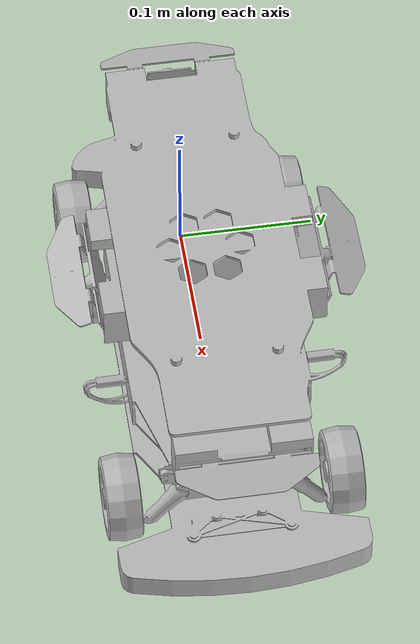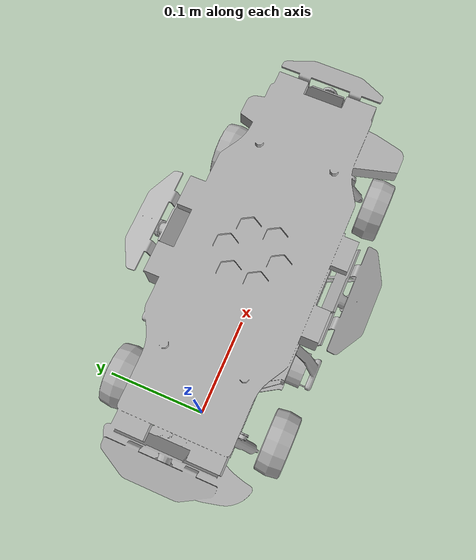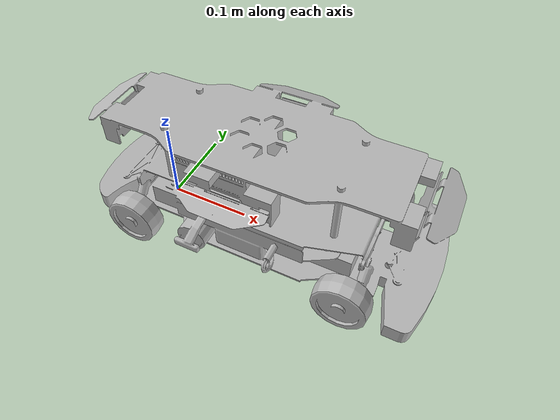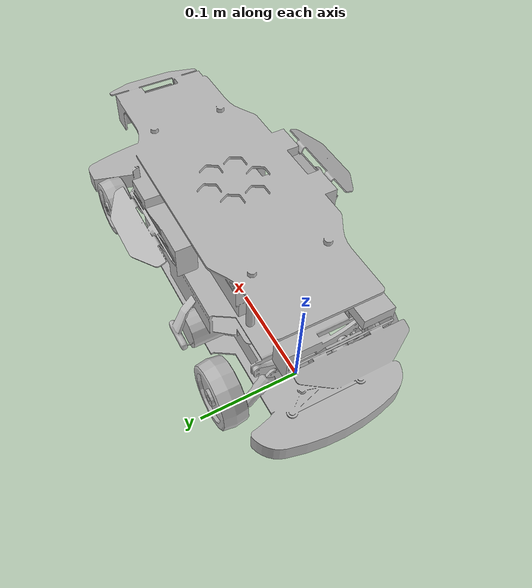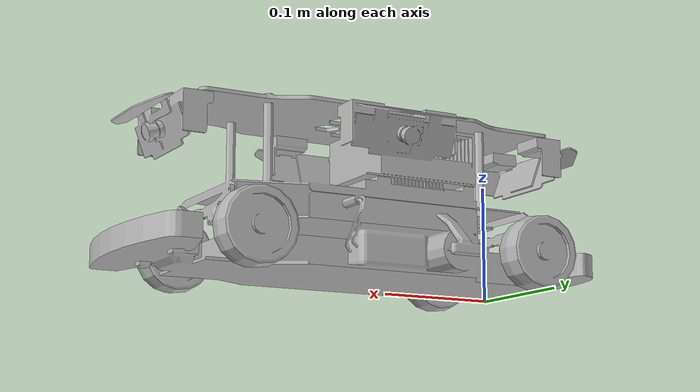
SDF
<?xml version="1.0" ?>
<sdf version="1.6">
  <model name="robocar_1_10">
    <static>false</static>

    <link name="base">
      <pose>0.0 0.0 0.0 0 0 0</pose>

      <inertial>
        <mass>3.0</mass>
        <pose>0.125 0.0 0.07 0 0 0</pose>
        <inertia>
          <ixx>0.03</ixx>
          <ixy>0.0</ixy>
          <iyy>0.050</iyy>
          <ixz>0.0</ixz>
          <iyz>0.0</iyz>
          <izz>0.054</izz>
        </inertia>
      </inertial>

      <collision name="collision">
        <pose>0.15 0.0 0.08</pose>
        <geometry>
          <box>
            <size>0.423 0.224 0.10</size>
          </box>
        </geometry>
      </collision>

      <visual name="visual">
        <geometry>
          <mesh>
            <uri>model://meshes/body.obj</uri>
          </mesh>
        </geometry>
      </visual>
    </link>

    <link name="rear_right_wheel">
      <pose>0.0 -0.07994 0.03165 0 0 0</pose>

      <inertial>
        <mass>0.2</mass>
        <inertia>
          <ixx>6.5e-5</ixx>
          <ixy>0.0</ixy>
          <iyy>1e-4</iyy>
          <ixz>0.0</ixz>
          <iyz>0.0</iyz>
          <izz>6.5e-5</izz>
        </inertia>
      </inertial>

      <visual name="visual">
        <pose>0.0 0.0 0.0 0 0 0.0</pose>
        <geometry>
          <mesh>
            <uri>model://meshes/tire.obj</uri>
          </mesh>
        </geometry>
      </visual>

      <collision name="collision">
        <pose>0.0 0.0 0.0 0 0 0</pose>
        <geometry>
          <sphere>
            <radius>0.03165</radius>
          </sphere>
        </geometry>
        <surface>
          <friction>
            <ode>
              <mu>1.1</mu>
              <mu2>1.1</mu2>
              <slip1>0.0</slip1>
              <slip2>0.0</slip2>
            </ode>
          </friction>
          <contact>
            <ode>
              <min_depth>0.001</min_depth>
              <kp>1e6</kp>
            </ode>
          </contact>
        </surface>
      </collision>

    </link>

    <link name="rear_right_wheel_holder">
      <pose relative_to="rear_right_wheel">0 0 0 0 0 0</pose>
    </link>

    <joint type="prismatic" name="rear_right_wheel_choke_joint">
      <child>rear_right_wheel_holder</child>
      <parent>base</parent>
      <axis>
        <xyz>0 0 1</xyz>
        <limit>
          <lower>-0.03</lower>
          <upper>0.03</upper>
        </limit>
        <dynamics>
          <damping>1000</damping>
          <spring_stiffness>3000</spring_stiffness>
          <spring_reference>0</spring_reference>
        </dynamics>
      </axis>
      <physics>
        <ode>
          <implicit_spring_damper>1</implicit_spring_damper>
          <cfm_damping>1</cfm_damping>
        </ode>
      </physics>
    </joint>

    <link name="rear_left_wheel">
      <pose>0.0 0.07994 0.03165 0 0 0</pose>

      <inertial>
        <mass>0.2</mass>
        <inertia>
          <ixx>6.5e-5</ixx>
          <ixy>0.0</ixy>
          <iyy>1e-4</iyy>
          <ixz>0.0</ixz>
          <iyz>0.0</iyz>
          <izz>6.5e-5</izz>
        </inertia>
      </inertial>

      <visual name="visual">
        <pose>0.0 0.0 0.0 0 0 0.0</pose>
        <geometry>
          <mesh>
            <uri>model://meshes/tire.obj</uri>
          </mesh>
        </geometry>
      </visual>

      <collision name="collision">
        <pose>0.0 0.0 0.0 0 0 0</pose>
        <geometry>
          <sphere>
            <radius>0.03165</radius>
          </sphere>
        </geometry>
        <surface>
          <friction>
            <ode>
              <mu>1.1</mu>
              <mu2>1.1</mu2>
              <slip1>0.0</slip1>
              <slip2>0.0</slip2>
            </ode>
          </friction>
          <contact>
            <ode>
              <min_depth>0.001</min_depth>
              <kp>1e6</kp>
            </ode>
          </contact>
        </surface>
      </collision>

    </link>

    <link name="rear_left_wheel_holder">
      <pose relative_to="rear_left_wheel">0 0 0 0 0 0</pose>
    </link>

    <joint type="prismatic" name="rear_left_wheel_choke_joint">
      <child>rear_left_wheel_holder</child>
      <parent>base</parent>
      <axis>
        <xyz>0 0 1</xyz>
        <limit>
          <lower>-0.03</lower>
          <upper>0.03</upper>
        </limit>
        <dynamics>
          <damping>1000</damping>
          <spring_stiffness>3000</spring_stiffness>
          <spring_reference>0</spring_reference>
        </dynamics>
      </axis>
      <physics>
        <ode>
          <implicit_spring_damper>1</implicit_spring_damper>
          <cfm_damping>1</cfm_damping>
        </ode>
      </physics>
    </joint>

    <link name="front_right_wheel">
      <pose>0.2568 -0.07994 0.03165 0 0 0</pose>

      <inertial>
        <mass>0.2</mass>
        <inertia>
          <ixx>6.5e-5</ixx>
          <ixy>0.0</ixy>
          <iyy>1e-4</iyy>
          <ixz>0.0</ixz>
          <iyz>0.0</iyz>
          <izz>6.5e-5</izz>
        </inertia>
      </inertial>

      <visual name="visual">
        <pose>0.0 0.0 0.0 0 0 0.0</pose>
        <geometry>
          <mesh>
            <uri>model://meshes/tire.obj</uri>
          </mesh>
        </geometry>
      </visual>

      <collision name="collision">
        <pose>0.0 0.0 0.0 0 0 0</pose>
        <geometry>
          <sphere>
            <radius>0.03165</radius>
          </sphere>
        </geometry>
        <surface>
          <friction>
            <ode>
              <mu>0.9</mu>
              <mu2>0.9</mu2>
              <slip1>0.0</slip1>
              <slip2>0.0</slip2>
            </ode>
          </friction>
          <contact>
            <ode>
              <min_depth>0.001</min_depth>
              <kp>1e6</kp>
            </ode>
          </contact>
        </surface>
      </collision>

    </link>

    <link name="front_right_wheel_suspension">
      <pose relative_to="front_right_wheel">0 0 0 0 0 0</pose>
    </link>

    <link name="front_right_wheel_holder">
      <pose relative_to="front_right_wheel">0 0 0 0 0 0</pose>
    </link>

    <joint type="prismatic" name="front_right_wheel_choke_joint">
      <child>front_right_wheel_suspension</child>
      <parent>base</parent>
      <axis>
        <xyz>0 0 1</xyz>
        <limit>
          <lower>-0.03</lower>
          <upper>0.03</upper>
        </limit>
        <dynamics>
          <damping>1000</damping>
          <spring_stiffness>3000</spring_stiffness>
          <spring_reference>0</spring_reference>
        </dynamics>
      </axis>
      <physics>
        <ode>
          <implicit_spring_damper>1</implicit_spring_damper>
          <cfm_damping>1</cfm_damping>
        </ode>
      </physics>
    </joint>

    <link name="front_left_wheel">
      <pose>0.2568 0.07994 0.03165 0 0 0</pose>

      <inertial>
        <mass>0.2</mass>
        <inertia>
          <ixx>6.5e-5</ixx>
          <ixy>0.0</ixy>
          <iyy>1e-4</iyy>
          <ixz>0.0</ixz>
          <iyz>0.0</iyz>
          <izz>6.5e-5</izz>
        </inertia>
      </inertial>

      <visual name="visual">
        <pose>0.0 0.0 0.0 0 0 0.0</pose>
        <geometry>
          <mesh>
            <uri>model://meshes/tire.obj</uri>
          </mesh>
        </geometry>
      </visual>

      <collision name="collision">
        <pose>0.0 0.0 0.0 0 0 0</pose>
        <geometry>
          <sphere>
            <radius>0.03165</radius>
          </sphere>
        </geometry>
        <surface>
          <friction>
            <ode>
              <mu>0.9</mu>
              <mu2>0.9</mu2>
              <slip1>0.0</slip1>
              <slip2>0.0</slip2>
            </ode>
          </friction>
          <contact>
            <ode>
              <min_depth>0.001</min_depth>
              <kp>1e6</kp>
            </ode>
          </contact>
        </surface>
      </collision>

    </link>

    <link name="front_left_wheel_suspension">
      <pose relative_to="front_left_wheel">0 0 0 0 0 0</pose>
    </link>

    <link name="front_left_wheel_holder">
      <pose relative_to="front_left_wheel">0 0 0 0 0 0</pose>
    </link>

    <joint type="prismatic" name="front_left_wheel_choke_joint">
      <child>front_left_wheel_suspension</child>
      <parent>base</parent>
      <axis>
        <xyz>0 0 1</xyz>
        <limit>
          <lower>-0.03</lower>
          <upper>0.03</upper>
        </limit>
        <dynamics>
          <damping>1000</damping>
          <spring_stiffness>3000</spring_stiffness>
          <spring_reference>0</spring_reference>
        </dynamics>
      </axis>
      <physics>
        <ode>
          <implicit_spring_damper>1</implicit_spring_damper>
          <cfm_damping>1</cfm_damping>
        </ode>
      </physics>
    </joint>

    <joint type="revolute" name="front_left_steer_joint">
      <child>front_left_wheel_holder</child>
      <parent>front_left_wheel_suspension</parent>
      <axis>
        <xyz>0 0 1</xyz>
        <limit>
          <lower>-0.5585</lower>
          <upper>0.5585</upper>
        </limit>
      </axis>
    </joint>

    <joint type="revolute" name="front_left_wheel_joint">
      <child>front_left_wheel</child>
      <parent>front_left_wheel_holder</parent>
      <axis>
        <xyz>0 1 0</xyz>
        <dynamics>
          <friction>0.2</friction>
        </dynamics>
      </axis>
    </joint>

    <joint type="revolute" name="front_right_steer_joint">
      <child>front_right_wheel_holder</child>
      <parent>front_right_wheel_suspension</parent>
      <axis>
        <xyz>0 0 1</xyz>
        <limit>
          <lower>-0.5585</lower>
          <upper>0.5585</upper>
        </limit>
      </axis>
    </joint>

    <joint type="revolute" name="front_right_wheel_joint">
      <child>front_right_wheel</child>
      <parent>front_right_wheel_holder</parent>
      <axis>
        <xyz>0 1 0</xyz>
        <dynamics>
          <friction>0.2</friction>
        </dynamics>
      </axis>
    </joint>

    <joint type="revolute" name="rear_left_wheel_joint">
      <pose>0 0 0 0 0 0</pose>
      <child>rear_left_wheel</child>
      <parent>rear_left_wheel_holder</parent>
      <axis>
        <xyz>0 1 0</xyz>
        <dynamics>
          <friction>0.2</friction>
        </dynamics>
      </axis>
    </joint>

    <joint type="revolute" name="rear_right_wheel_joint">
      <pose>0 0 0 0 0 0</pose>
      <child>rear_right_wheel</child>
      <parent>rear_right_wheel_holder</parent>
      <axis>
        <xyz>0 1 0</xyz>
        <dynamics>
          <friction>0.2</friction>
        </dynamics>
      </axis>
    </joint>

    <joint name="steering_joint" type="revolute">
      <pose>0 0 0 0 0 0</pose>
      <parent>base</parent>
      <child>steering_wheel</child>
      <axis>
        <xyz>-1 0 0.47</xyz>
        <limit>
          <lower>-7.85</lower>
          <upper>7.85</upper>
        </limit>
        <dynamics>
          <damping>1.0</damping>
        </dynamics>
        <use_parent_model_frame>true</use_parent_model_frame>
      </axis>
      <physics>
        <ode>
          <cfm_damping>1</cfm_damping>
        </ode>
      </physics>
    </joint>

    <link name="steering_wheel">
      <pose>0.15 0.0 0.2 0 0 0</pose>
      <inertial>
        <mass>0.1</mass>
        <inertia>
          <ixx>0.0014583300</ixx>
          <ixy>0</ixy>
          <ixz>0</ixz>
          <iyy>0.0014583300</iyy>
          <iyz>0</iyz>
          <izz>0.0012500000</izz>
        </inertia>
      </inertial>
    </link>
  </model>
</sdf>
